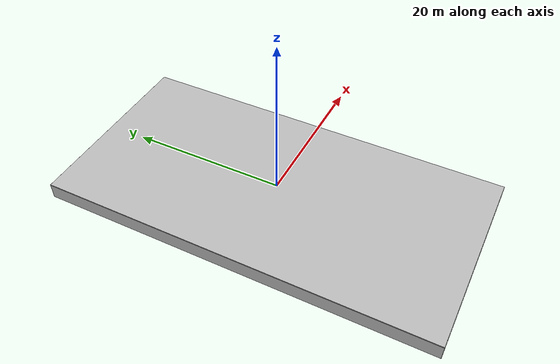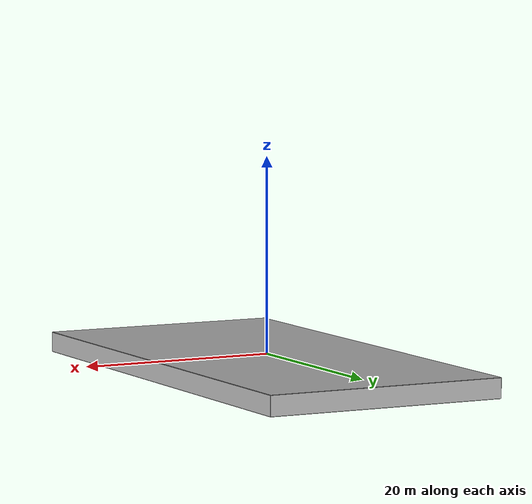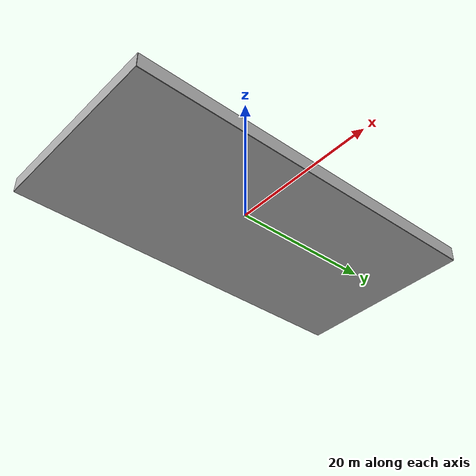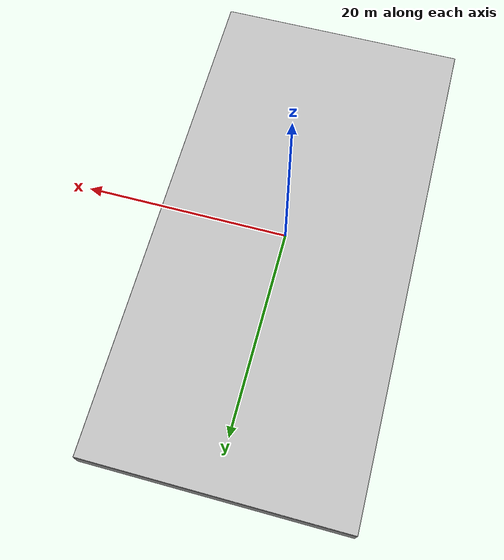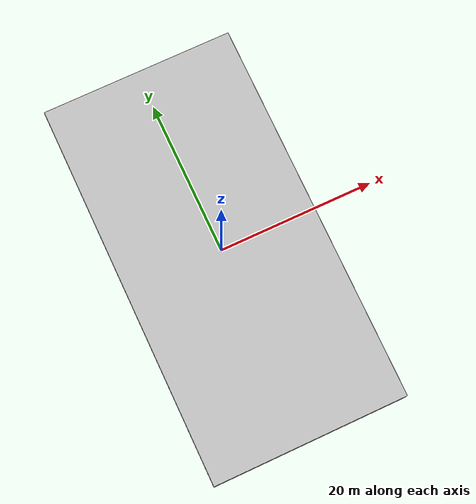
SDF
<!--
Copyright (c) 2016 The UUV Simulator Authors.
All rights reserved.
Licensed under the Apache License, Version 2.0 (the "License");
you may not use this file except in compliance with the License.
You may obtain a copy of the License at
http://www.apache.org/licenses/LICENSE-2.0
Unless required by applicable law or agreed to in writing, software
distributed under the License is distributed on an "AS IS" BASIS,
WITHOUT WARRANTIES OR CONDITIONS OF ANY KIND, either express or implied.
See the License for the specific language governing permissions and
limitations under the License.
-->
<?xml version="1.0" ?>
<sdf version="1.5">
  <model name="pool_Water">
    <static>true</static>
    <link name="link">
      <visual name="ground">
        <cast_shadows>false</cast_shadows>
        <pose>0 0 -2 0 0 0</pose>
        <geometry>
          <box>
            <size>25 50 .1</size>
          </box>
        </geometry>
        <material>
          <script>
            <uri>file://Media/materials/scripts/sand.material</uri>
            <name>UUVSimulator/SandAndStones</name>
          </script>
        </material>
      </visual>

      <collision name="ground">
        <pose>0 0 -2 0 0 0</pose>
        <geometry>
          <box>
            <size>25 50 .1</size>
          </box>
        </geometry>
      </collision>

      <visual name="surface">
        <cast_shadows>false</cast_shadows>
        <pose>0 0 0 0 0 0</pose>
        <geometry>
          <box>
            <size>25 50 .1</size>
          </box>
        </geometry>
        <material>
          <script>
            <uri>file://Media/materials/scripts/water.material</uri>
            <name>UUVSimulator/StaticDeepWater</name>
          </script>
        </material>
      </visual>

      <visual name="north">
        <cast_shadows>false</cast_shadows>
        <pose>12.5 0 -1 0 0 0</pose>
        <geometry>
          <box>
            <size>.1 50 2</size>
          </box>
        </geometry>
        <material>
          <script>
            <uri>file://Media/materials/scripts/water.material</uri>
            <name>UUVSimulator/SeaWall</name>
          </script>
        </material>
      </visual>

      <visual name="south">
        <cast_shadows>false</cast_shadows>
        <pose>-12.5 0 -1 0 0 0</pose>
        <geometry>
          <box>
            <size>.1 50 2</size>
          </box>
        </geometry>
        <material>
          <script>
            <uri>file://Media/materials/scripts/water.material</uri>
            <name>UUVSimulator/SeaWall</name>
          </script>
        </material>
      </visual>

      <visual name="east">
        <cast_shadows>false</cast_shadows>
        <pose>0 -25 -1 0 0 0</pose>
        <geometry>
          <box>
            <size>25 .1 2</size>
          </box>
        </geometry>
        <material>
          <script>
            <uri>file://Media/materials/scripts/water.material</uri>
            <name>UUVSimulator/SeaWall</name>
          </script>
        </material>
      </visual>

      <visual name="west">
        <cast_shadows>false</cast_shadows>
        <pose>0 25 -1 0 0 0</pose>
        <geometry>
          <box>
            <size>25 .1 2</size>
          </box>
        </geometry>
        <material>
          <script>
            <uri>file://Media/materials/scripts/water.material</uri>
            <name>UUVSimulator/SeaWall</name>
          </script>
        </material>
      </visual>
    </link>
  </model>
</sdf>
